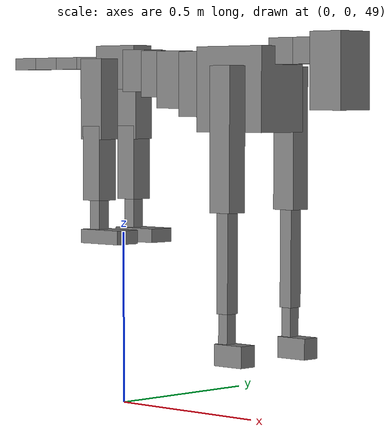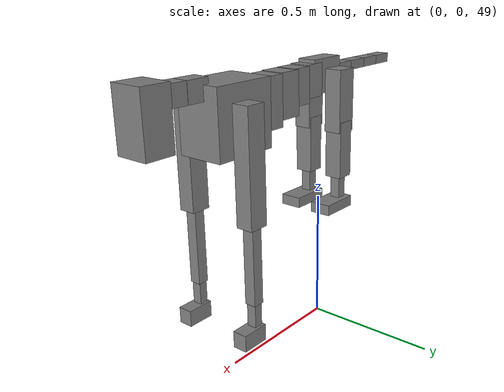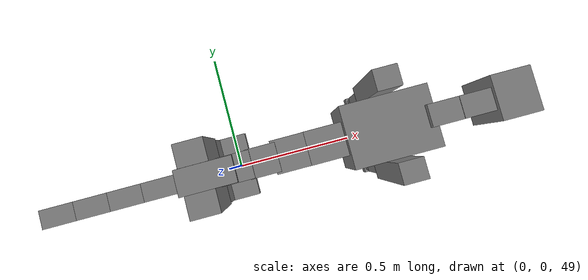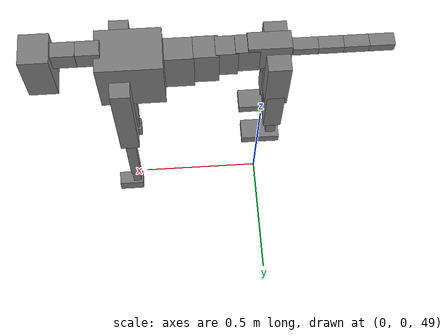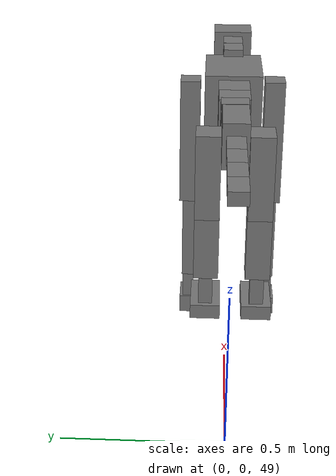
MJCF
<mujoco model="dog">

    <default>
        <joint armature="0.02" stiffness="1" damping="0.2" limited="true"/>
        <geom condim="3" friction="1 0.05 0.05" margin="0.01"/>
        <motor ctrllimited="true" ctrlrange="-1.0 1.0" forcelimited="true" gear="50"/>
    </default>

    <compiler inertiafromgeom="true" angle="radian"/>

    <option timestep="0.016" iterations="50" tolerance="1e-10" solver="Newton" jacobian="dense" cone="pyramidal"/>

    <size nconmax="20000" njmax="60000" nstack="5000000"/>
    <visual>
        <map force="0.1" zfar="30"/>
        <rgba haze="0.15 0.25 0.35 1"/>
        <quality shadowsize="2048"/>
        <global offwidth="800" offheight="800"/>
    </visual>

    <asset>
        <texture type="skybox" builtin="gradient" rgb1="0.3 0.5 0.7" rgb2="0 0 0" width="512" height="512"/>
        <texture name="texplane" type="2d" builtin="checker" rgb1=".2 .3 .4" rgb2=".1 0.15 0.2" width="512" height="512"
                 mark="cross" markrgb=".8 .8 .8"/>
        <texture name="texgeom" type="cube" builtin="flat" mark="cross" width="127" height="1278" rgb1="0.8 0.6 0.4"
                 rgb2="0.8 0.6 0.4" markrgb="1 1 1" random="0.01"/>

        <material name="matplane" reflectance="0.3" texture="texplane" texrepeat="1 1" texuniform="true"/>
        <material name="matgeom" texture="texgeom" texuniform="true" rgba="0.8 0.6 .4 1"/>
    </asset>

    <worldbody>
        <geom name="floor" pos="0 0 0" size="0 0 .25" type="plane" material="matplane" condim="3"/>

        <light directional="false" diffuse=".2 .2 .2" specular="0 0 0" pos="0 0 5" dir="0 0 -1" castshadow="false"/>
        <light mode="targetbodycom" target="torso" directional="false" diffuse=".8 .8 .8" specular="0.3 0.3 0.3"
               pos="0 0 4.0" dir="0 0 -1"/>

        <body name="root" pos="0 0 50">
            <freejoint name="root_1"/>
            <geom type="box" pos="0 0 -0.02" size="0.0774  0.0358  0.063" density="2030"/>

            <body name="spine1" pos="0.054 0 0">
                <joint name="spine1_y" axis="0 1 0" range="0 0.7" limited="true"/>
                <geom type="box" pos="0.02375 0 -0.03" size="0.04375  0.0375  0.05985" density="2030"/>

                <body name="spine2" pos="0.0612 0 0">
                    <joint name="spine2_y" axis="0 1 0" range="-0.15 0.15" limited="true"/>
                    <geom type="box" pos="0.03555  0  -0.04" size="0.04055  0.039  0.06615" density="2030"/>

                    <body name="spine3" pos="0.0730 0 0">
                        <joint name="spine3_y" axis="0 1 0" range="-0.15 0.15" limited="true"/>
                        <geom type="box" pos="0.03555  0  -0.057" size="0.04555  0.0445  0.081" density="2030"/>

                        <body name="spine4" pos="0.0780 0 0">
                            <joint name="spine4_y" axis="0 1 0" range="-0.15 0.15" limited="true"/>
                            <geom type="box" pos="0.05265  0  -0.07" size="0.05265  0.045  0.09135" density="2030"/>

                            <body name="torso" pos="0.1082 0 0">
                                <joint name="torso_y" axis="0 1 0" range="-0.15 0.15" limited="true"/>
                                <geom type="box" pos="0.11925  0  -0.085" size="0.11925  0.085  0.11745"
                                      density="2030"/>

                                <body name="neck1" pos="0.2160  0   0.0180">
                                    <joint name="neck1_y" axis="0 1 0" range="-1.2  -1" limited="true"/>
                                    <geom type="box" pos="0.0423  0  0" size="0.0423  0.03  0.036" density="2325"/>

                                    <body name="neck2" pos="0.0853  0  0">
                                        <joint name="neck2_y" axis="0 1 0" range="0.1  0" limited="true"/>
                                        <geom type="box" pos="0.0423  0  0" size="0.0423  0.03  0.036" density="2325"/>

                                        <body name="head" pos="0.0853  0  0">
                                            <joint name="head_y" axis="0 1 0" range="-0.3  -0.2" limited="true"/>
                                            <geom type="box" pos="0.0531  0  -0.055" size="0.0531  0.06  0.1044"
                                                  density="4030"/>

                                        </body>
                                    </body>
                                </body>

                                <body name="front_shoulder" pos="0.156  0   -0.0480">
                                    <joint name="front_shoulder_y" axis="0 1 0" range="-1 1.5" limited="true"/>
                                    <geom type="box" pos="0 0.13 -0.1722" size="0.0361  0.0309  0.1988" density="1158"/>
                                    <geom type="box" pos="0 -0.13 -0.1722" size="0.0361  0.0309  0.1988"
                                          density="1158"/>

                                    <body name="front_elbow" pos="0  0  -0.3443">
                                        <joint name="front_elbow_y" axis="0 1 0" range="-2 0" limited="true"/>
                                        <geom type="box" pos="0 0.13 -0.1503" size="0.0201  0.0206  0.1503"
                                              density="1081"/>
                                        <geom type="box" pos="0 -0.13 -0.1503" size="0.0201  0.0206  0.1503"
                                              density="1081"/>

                                        <body name="front_wrist" pos="0  0  -0.3005">
                                            <joint name="front_wrist_y" axis="0 1 0" range="-0.2 0" limited="true"/>
                                            <geom type="box" pos="0 0.13 -0.0485" size="0.0157  0.0175  0.0616"
                                                  density="1664"/>
                                            <geom type="box" pos="0 -0.13 -0.0485" size="0.0157  0.0175  0.0616"
                                                  density="1664"/>

                                            <body name="front_finger_end" pos="0  0  -0.0969">
                                                <joint name="front_finger_y" axis="0 1 0" range="-0.4 1"
                                                       limited="true"/>
                                                <geom type="box" pos="0.0269  0.13  -0.0147"
                                                      size="0.0493  0.0269  0.0297" density="1515"/>
                                                <geom type="box" pos="0.0269  -0.13  -0.0147"
                                                      size="0.0493  0.0269  0.0297" density="1515"/>

                                            </body>

                                        </body>
                                    </body>
                                </body>

                            </body>
                        </body>
                    </body>
                </body>
            </body>

            <body name="back_hip" pos="-0.03 0 -0.018">
                <joint name="back_hip_y" axis="0 1 0" range="-1.5 0.3" limited="true"/>
                <geom type="box" pos="0 0.07 -0.0936" size="0.0422  0.0331  0.1164" density="1154"/>
                <geom type="box" pos="0 -0.07 -0.0936" size="0.0422  0.0331  0.1164" density="1154"/>

                <body name="back_knee" pos="0  0  -0.1872">
                    <joint name="back_knee_y" axis="0 1 0" range="0 2.8" limited="true"/>
                    <geom type="box" pos="0 0.07 -0.0920" size="0.0339  0.0334  0.1076" density="1227"/>
                    <geom type="box" pos="0 -0.07 -0.0920" size="0.0339  0.0334  0.1076" density="1227"/>

                    <body name="back_ankle" pos="0  0  -0.1840">
                        <joint name="back_ankle_y" axis="0 1 0" range="-2.2 0" limited="true"/>
                        <geom type="box" pos="0 0.07 -0.0572" size="0.0189  0.0189  0.0684" density="1284"/>
                        <geom type="box" pos="0 -0.07 -0.0572" size="0.0189  0.0189  0.0684" density="1284"/>

                        <body name="back_toe_end" pos="0  0  -0.1143">
                            <joint name="back_toe_y" axis="0 1 0" range="-0.4 1" limited="true"/>
                            <geom type="box" pos="0.0408  0.07  -0.0050" size="0.0747  0.0408  0.0200" density="1515"/>
                            <geom type="box" pos="0.0408  -0.07  -0.0050" size="0.0747  0.0408  0.0200" density="1515"/>

                        </body>
                    </body>
                </body>
            </body>

            <body name="tail1" pos="-0.074 0 -0.006">
                <joint name="tail1_y" axis="0 1 0" range="-0.2 0.2" limited="true"/>
                <geom type="box" pos="-0.0536  0  0" size="0.045  0.025  0.0175" density="1587"/>

                <body name="tail2" pos="-0.09 0 0">
                    <joint name="tail2_y" axis="0 1 0" range="-0.2 0.2" limited="true"/>
                    <geom type="box" pos="-0.0536  0  0" size="0.045  0.025  0.0175" density="1587"/>

                    <body name="tail3" pos="-0.09 0 0">
                        <joint name="tail3_y" axis="0 1 0" range="-0.2 0.2" limited="true"/>
                        <geom type="box" pos="-0.0536  0  0" size="0.045  0.025  0.0175" density="1587"/>

                        <body name="tail4" pos="-0.09 0 0">
                            <joint name="tail4_y" axis="0 1 0" range="-0.2 0.2" limited="true"/>
                            <geom type="box" pos="-0.0536  0  0" size="0.045  0.025  0.0175" density="1587"/>

                        </body>
                    </body>
                </body>
            </body>
        </body>
    </worldbody>

    <actuator>
        <motor joint="spine1_y" forcerange="-150 150     "/>
        <motor joint="spine2_y" forcerange="-150 150     "/>
        <motor joint="spine3_y" forcerange="-150 150     "/>
        <motor joint="spine4_y" forcerange="-150 150     "/>
        <motor joint="torso_y" forcerange="-150 150     "/>
        <motor joint="neck1_y" forcerange="-100 100       "/>
        <motor joint="neck2_y" forcerange="-100 100       "/>
        <motor joint="head_y" forcerange="-150 150       "/>
        <motor joint="front_shoulder_y" forcerange="-157.04 148.69"/>
        <motor joint="front_elbow_y" forcerange="-124.16 125.39"/>
        <motor joint="front_wrist_y" forcerange="-57.18 82.76"/>
        <motor joint="front_finger_y" forcerange="-28.89 74.47"/>
        <motor joint="back_hip_y" forcerange="-241.62 399.98"/>
        <motor joint="back_knee_y" forcerange="-298.38 387.63"/>
        <motor joint="back_angle_y" forcerange="-50.91 151.06"/>
        <motor joint="back_toe_y" forcerange="-111.91 134.24"/>
        <motor joint="tail1_y" forcerange="-50 50     "/>
        <motor joint="tail2_y" forcerange="-50 50     "/>
        <motor joint="tail3_y" forcerange="-50 50     "/>
        <motor joint="tail4_y" forcerange="-50 50     "/>
    </actuator>
</mujoco>
